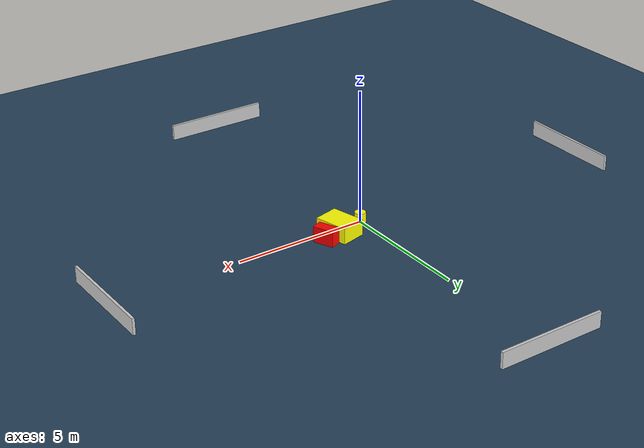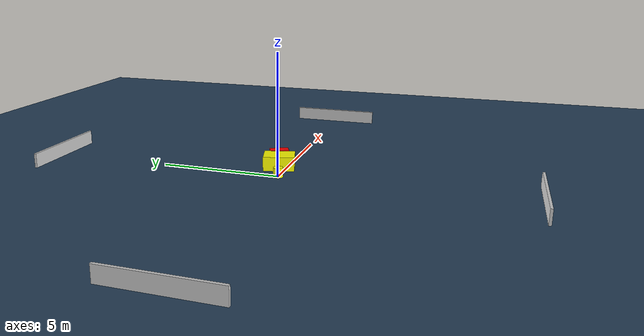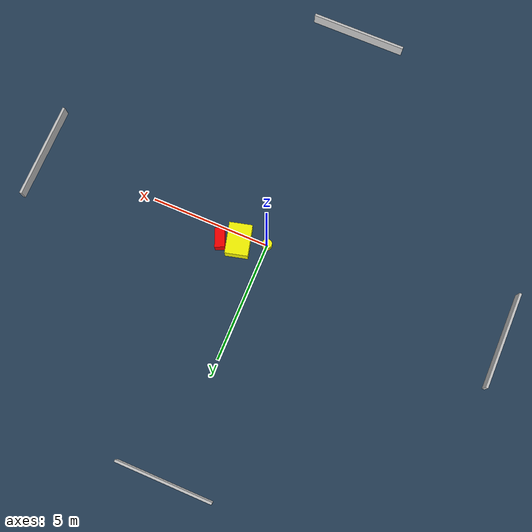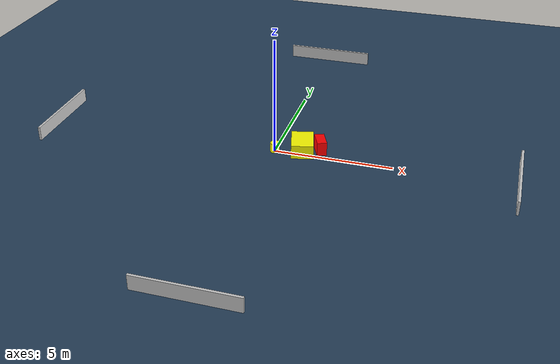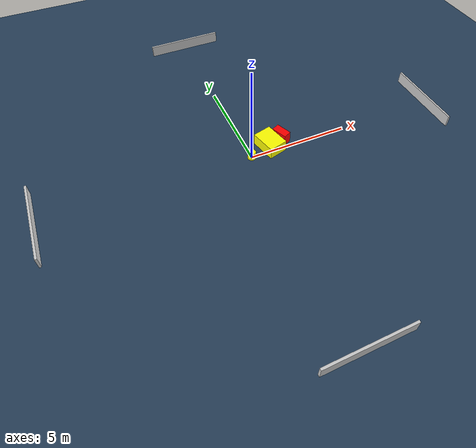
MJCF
<?xml version="1.0" ?>
<mujoco model="generated_environment">
  <option timestep="0.01" integrator="RK4" cone="elliptic"/>
  <default>
    <geom density="1"/>
  </default>
  <asset>
    <texture builtin="gradient" height="3072" name="skybox" rgb1="0.3 0.5 0.7" rgb2="0 0 0" type="skybox" width="512"/>
    <texture builtin="checker" height="300" name="groundplane" rgb1="0.2 0.3 0.4" rgb2="0.1 0.2 0.3" type="2d" width="300"/>
    <material name="groundplane" reflectance="0.2" texrepeat="5 5" texture="groundplane"/>
  </asset>
  <worldbody>
    <light dir="0 0 -1" directional="true" pos="0 0 1.5"/>
    <geom condim="3" friction="0.5 0.005 0.001" material="groundplane" name="floor" pos="0 0 0" size="0 0 0.05" type="plane"/>
    <body name="walls">
      <geom name="wall_1" condim="4" pos="-10.0 0.0 0.3" rgba="0.800000011920929 0.800000011920929 0.800000011920929 1.0" size="0.05 2.0 0.3" type="box"/>
      <geom name="wall_2" condim="4" pos="10.0 0.0 0.3" rgba="0.800000011920929 0.800000011920929 0.800000011920929 1.0" size="0.05 2.0 0.3" type="box"/>
      <geom name="wall_3" condim="4" pos="0.0 -10.0 0.3" rgba="0.800000011920929 0.800000011920929 0.800000011920929 1.0" size="2.0 0.05 0.3" type="box"/>
      <geom name="wall_4" condim="4" pos="0.0 10.0 0.3" rgba="0.800000011920929 0.800000011920929 0.800000011920929 1.0" size="2.0 0.05 0.3" type="box"/>
    </body>
    <body name="robot">
      <joint name="joint_x" type="slide" pos="0 0 0" axis="1 0 0"/>
      <joint name="joint_y" type="slide" pos="0 0 0" axis="0 1 0"/>
      <geom name="robot" type="cylinder" pos="0.0 0.0 0.2" size="0.2 0.2 0.0" mass="5.0" friction="1.0 0.005 0.0001" condim="4" rgba="1.0 1.0 0.0 1.0"/>
    </body>
    <body name="obstacle_1_movable">
      <geom name="obstacle_1_movable" condim="4" pos="1.1097344472188193 0.3091088445636638 0.3" euler="0 0 14.238404167094423" friction="0.0 0.005 0.001" rgba="1.0 1.0 0.0 1.0" size="0.47097238753417836 0.6437675158564402 0.3" type="box" mass="0.1"/>
      <joint type="free"/>
    </body>
    <body name="obstacle_2_static">
      <geom name="obstacle_2_static" condim="4" pos="1.8321793054667026 0.5423517639897627 0.3" euler="0 0 293.18381431450183" friction="0.0 0.005 0.001" rgba="1.0 0.0 0.0 1.0" size="0.39748477721806097 0.20632103877346716 0.3" type="box"/>
    </body>
  </worldbody>
  <actuator>
    <motor name="actuator_x" joint="joint_x" gear="1" ctrlrange="-1 1"/>
    <motor name="actuator_y" joint="joint_y" gear="1" ctrlrange="-1 1"/>
  </actuator>
</mujoco>
